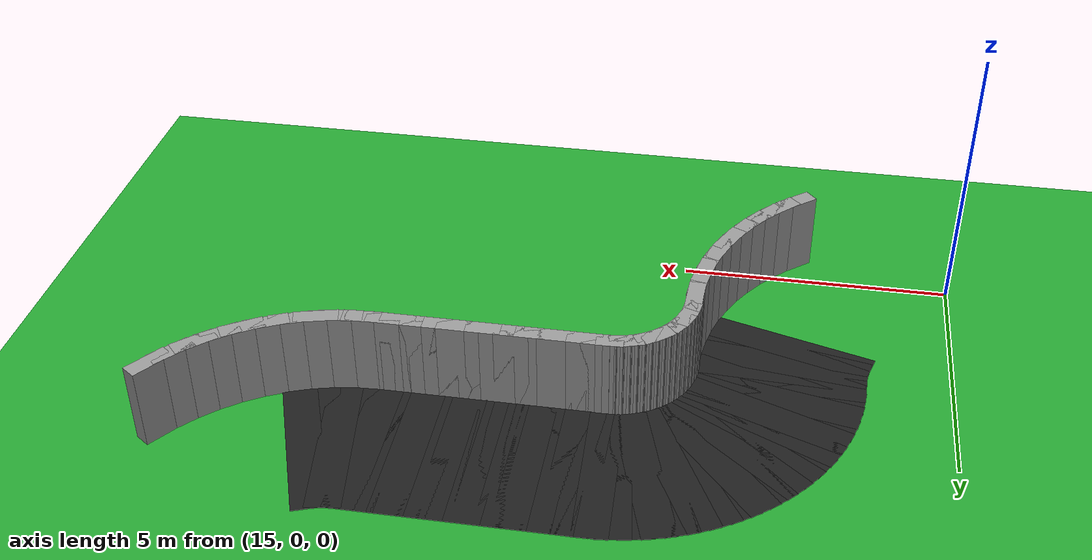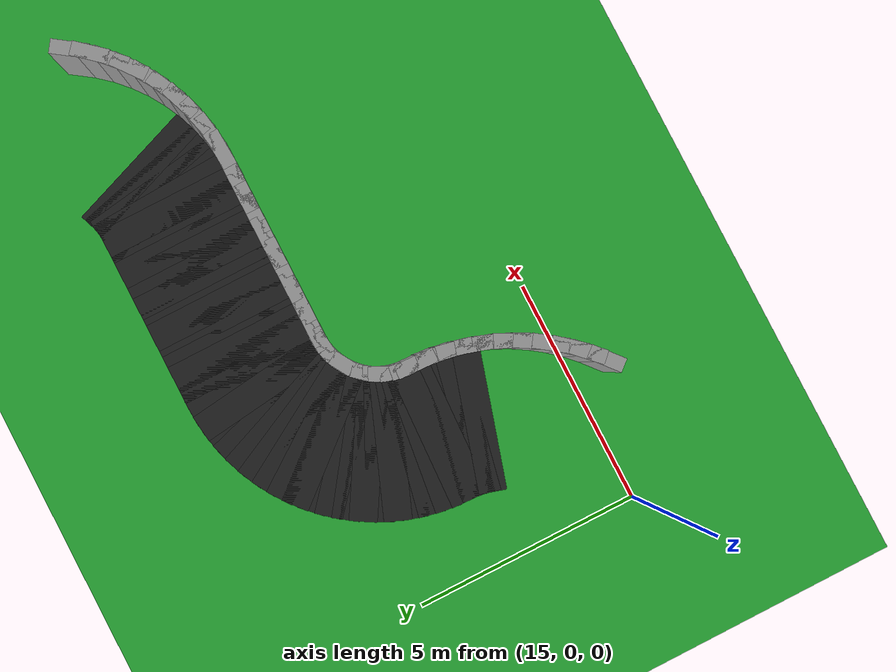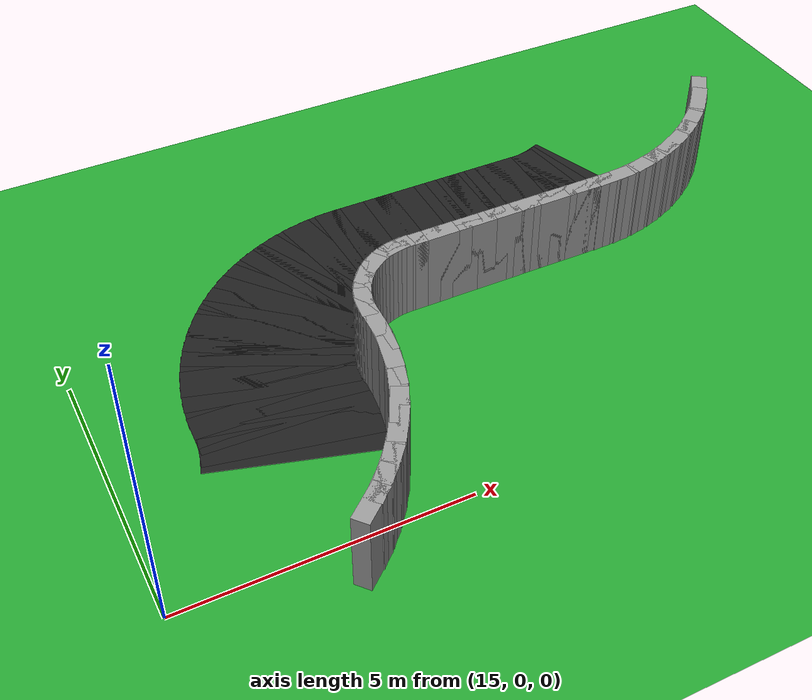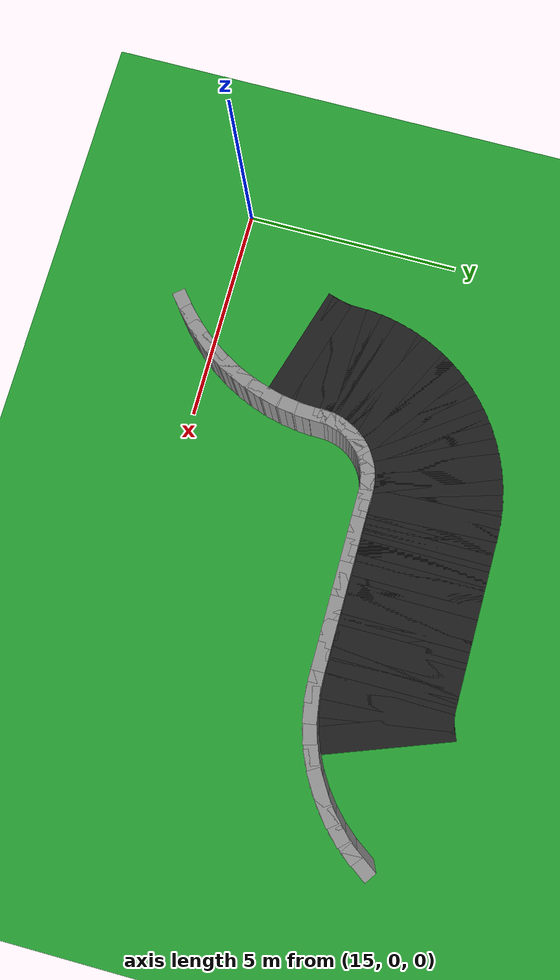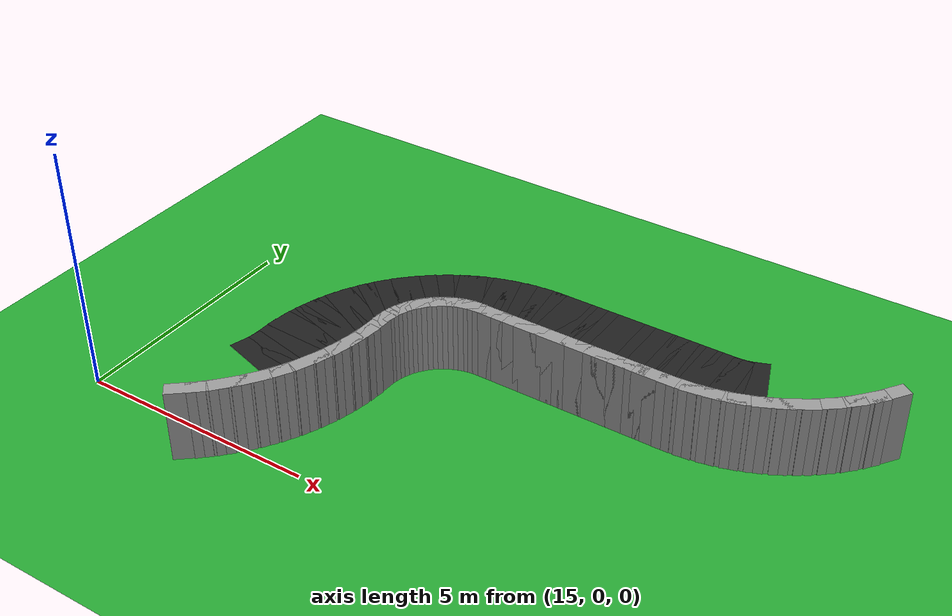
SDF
<sdf version="1.6">
 <world name="loop_extreme">
  <include><uri>model://sun</uri></include>
  <model name="ground_plane">
   <static>true</static>
   <link name="link">
    <collision name="collision">
     <surface><friction><ode><mu>100</mu><mu2>50</mu2></ode></friction></surface>
     <geometry><plane><normal>0 0 1</normal><size>120 120</size></plane></geometry>
    </collision>
    <visual name="visual">
     <geometry><plane><normal>0 0 1</normal><size>120 120</size></plane></geometry>
     <material>
      <script><uri>file://media/materials/scripts/gazebo.material</uri><name>Gazebo/Green</name></script>
     </material>
    </visual>
   </link>
  </model>
  <model name="curbR_68">
   <static>true</static>
   <pose>18.003 -0.545 0.750 0 0 0.70272</pose>
   <link name="link">
    <collision name="collision"><geometry><box><size>0.744 0.300 1.500</size></box></geometry></collision>
    <visual name="visual">
     <geometry><box><size>0.744 0.300 1.500</size></box></geometry>
     <material>
      <script><uri>file://media/materials/scripts/gazebo.material</uri><name>Gazebo/Grey</name></script>
     </material>
    </visual>
   </link>
  </model>
  <model name="curbR_69">
   <static>true</static>
   <pose>18.286 -0.285 0.750 0 0 0.78540</pose>
   <link name="link">
    <collision name="collision"><geometry><box><size>0.744 0.300 1.500</size></box></geometry></collision>
    <visual name="visual">
     <geometry><box><size>0.744 0.300 1.500</size></box></geometry>
     <material>
      <script><uri>file://media/materials/scripts/gazebo.material</uri><name>Gazebo/Grey</name></script>
     </material>
    </visual>
   </link>
  </model>
  <model name="curbR_70">
   <static>true</static>
   <pose>18.546 -0.002 0.750 0 0 0.86807</pose>
   <link name="link">
    <collision name="collision"><geometry><box><size>0.744 0.300 1.500</size></box></geometry></collision>
    <visual name="visual">
     <geometry><box><size>0.744 0.300 1.500</size></box></geometry>
     <material>
      <script><uri>file://media/materials/scripts/gazebo.material</uri><name>Gazebo/Grey</name></script>
     </material>
    </visual>
   </link>
  </model>
  <model name="curbR_71">
   <static>true</static>
   <pose>18.782 0.301 0.750 0 0 0.95075</pose>
   <link name="link">
    <collision name="collision"><geometry><box><size>0.744 0.300 1.500</size></box></geometry></collision>
    <visual name="visual">
     <geometry><box><size>0.744 0.300 1.500</size></box></geometry>
     <material>
      <script><uri>file://media/materials/scripts/gazebo.material</uri><name>Gazebo/Grey</name></script>
     </material>
    </visual>
   </link>
  </model>
  <model name="curbR_72">
   <static>true</static>
   <pose>18.992 0.622 0.750 0 0 1.03342</pose>
   <link name="link">
    <collision name="collision"><geometry><box><size>0.744 0.300 1.500</size></box></geometry></collision>
    <visual name="visual">
     <geometry><box><size>0.744 0.300 1.500</size></box></geometry>
     <material>
      <script><uri>file://media/materials/scripts/gazebo.material</uri><name>Gazebo/Grey</name></script>
     </material>
    </visual>
   </link>
  </model>
  <model name="curbR_73">
   <static>true</static>
   <pose>19.175 0.960 0.750 0 0 1.11609</pose>
   <link name="link">
    <collision name="collision"><geometry><box><size>0.744 0.300 1.500</size></box></geometry></collision>
    <visual name="visual">
     <geometry><box><size>0.744 0.300 1.500</size></box></geometry>
     <material>
      <script><uri>file://media/materials/scripts/gazebo.material</uri><name>Gazebo/Grey</name></script>
     </material>
    </visual>
   </link>
  </model>
  <model name="curbR_74">
   <static>true</static>
   <pose>19.329 1.312 0.750 0 0 1.19877</pose>
   <link name="link">
    <collision name="collision"><geometry><box><size>0.744 0.300 1.500</size></box></geometry></collision>
    <visual name="visual">
     <geometry><box><size>0.744 0.300 1.500</size></box></geometry>
     <material>
      <script><uri>file://media/materials/scripts/gazebo.material</uri><name>Gazebo/Grey</name></script>
     </material>
    </visual>
   </link>
  </model>
  <model name="asphalt_75">
   <static>true</static>
   <pose>17.874 2.145 0.005 0 0 1.28144</pose>
   <link name="link">
    <visual name="visual">
     <geometry><box><size>0.608 3.000 0.010</size></box></geometry>
     <material>
      <script><uri>file://media/materials/scripts/gazebo.material</uri><name>Gazebo/Black</name></script>
     </material>
    </visual>
   </link>
  </model>
  <model name="curbR_75">
   <static>true</static>
   <pose>19.454 1.675 0.750 0 0 1.28144</pose>
   <link name="link">
    <collision name="collision"><geometry><box><size>0.744 0.300 1.500</size></box></geometry></collision>
    <visual name="visual">
     <geometry><box><size>0.744 0.300 1.500</size></box></geometry>
     <material>
      <script><uri>file://media/materials/scripts/gazebo.material</uri><name>Gazebo/Grey</name></script>
     </material>
    </visual>
   </link>
  </model>
  <model name="asphalt_76">
   <static>true</static>
   <pose>17.934 2.386 0.005 0 0 1.36411</pose>
   <link name="link">
    <visual name="visual">
     <geometry><box><size>0.608 3.000 0.010</size></box></geometry>
     <material>
      <script><uri>file://media/materials/scripts/gazebo.material</uri><name>Gazebo/Black</name></script>
     </material>
    </visual>
   </link>
  </model>
  <model name="curbR_76">
   <static>true</static>
   <pose>19.548 2.047 0.750 0 0 1.36411</pose>
   <link name="link">
    <collision name="collision"><geometry><box><size>0.744 0.300 1.500</size></box></geometry></collision>
    <visual name="visual">
     <geometry><box><size>0.744 0.300 1.500</size></box></geometry>
     <material>
      <script><uri>file://media/materials/scripts/gazebo.material</uri><name>Gazebo/Grey</name></script>
     </material>
    </visual>
   </link>
  </model>
  <model name="asphalt_77">
   <static>true</static>
   <pose>17.975 2.630 0.005 0 0 1.44679</pose>
   <link name="link">
    <visual name="visual">
     <geometry><box><size>0.608 3.000 0.010</size></box></geometry>
     <material>
      <script><uri>file://media/materials/scripts/gazebo.material</uri><name>Gazebo/Black</name></script>
     </material>
    </visual>
   </link>
  </model>
  <model name="curbR_77">
   <static>true</static>
   <pose>19.611 2.426 0.750 0 0 1.44679</pose>
   <link name="link">
    <collision name="collision"><geometry><box><size>0.744 0.300 1.500</size></box></geometry></collision>
    <visual name="visual">
     <geometry><box><size>0.744 0.300 1.500</size></box></geometry>
     <material>
      <script><uri>file://media/materials/scripts/gazebo.material</uri><name>Gazebo/Grey</name></script>
     </material>
    </visual>
   </link>
  </model>
  <model name="asphalt_78">
   <static>true</static>
   <pose>17.996 2.877 0.005 0 0 1.52946</pose>
   <link name="link">
    <visual name="visual">
     <geometry><box><size>0.608 3.000 0.010</size></box></geometry>
     <material>
      <script><uri>file://media/materials/scripts/gazebo.material</uri><name>Gazebo/Black</name></script>
     </material>
    </visual>
   </link>
  </model>
  <model name="curbR_78">
   <static>true</static>
   <pose>19.643 2.809 0.750 0 0 1.52946</pose>
   <link name="link">
    <collision name="collision"><geometry><box><size>0.744 0.300 1.500</size></box></geometry></collision>
    <visual name="visual">
     <geometry><box><size>0.744 0.300 1.500</size></box></geometry>
     <material>
      <script><uri>file://media/materials/scripts/gazebo.material</uri><name>Gazebo/Grey</name></script>
     </material>
    </visual>
   </link>
  </model>
  <model name="asphalt_79">
   <static>true</static>
   <pose>18.006 3.125 0.005 0 0 1.52946</pose>
   <link name="link">
    <visual name="visual">
     <geometry><box><size>0.608 3.000 0.010</size></box></geometry>
     <material>
      <script><uri>file://media/materials/scripts/gazebo.material</uri><name>Gazebo/Black</name></script>
     </material>
    </visual>
   </link>
  </model>
  <model name="curbR_79">
   <static>true</static>
   <pose>19.653 3.057 0.750 0 0 1.52946</pose>
   <link name="link">
    <collision name="collision"><geometry><box><size>0.472 0.300 1.500</size></box></geometry></collision>
    <visual name="visual">
     <geometry><box><size>0.472 0.300 1.500</size></box></geometry>
     <material>
      <script><uri>file://media/materials/scripts/gazebo.material</uri><name>Gazebo/Grey</name></script>
     </material>
    </visual>
   </link>
  </model>
  <model name="asphalt_80">
   <static>true</static>
   <pose>18.026 3.372 0.005 0 0 1.44679</pose>
   <link name="link">
    <visual name="visual">
     <geometry><box><size>0.608 3.000 0.010</size></box></geometry>
     <material>
      <script><uri>file://media/materials/scripts/gazebo.material</uri><name>Gazebo/Black</name></script>
     </material>
    </visual>
   </link>
  </model>
  <model name="curbR_80">
   <static>true</static>
   <pose>19.662 3.168 0.750 0 0 1.44679</pose>
   <link name="link">
    <collision name="collision"><geometry><box><size>0.472 0.300 1.500</size></box></geometry></collision>
    <visual name="visual">
     <geometry><box><size>0.472 0.300 1.500</size></box></geometry>
     <material>
      <script><uri>file://media/materials/scripts/gazebo.material</uri><name>Gazebo/Grey</name></script>
     </material>
    </visual>
   </link>
  </model>
  <model name="asphalt_81">
   <static>true</static>
   <pose>18.067 3.616 0.005 0 0 1.36411</pose>
   <link name="link">
    <visual name="visual">
     <geometry><box><size>0.608 3.000 0.010</size></box></geometry>
     <material>
      <script><uri>file://media/materials/scripts/gazebo.material</uri><name>Gazebo/Black</name></script>
     </material>
    </visual>
   </link>
  </model>
  <model name="curbR_81">
   <static>true</static>
   <pose>19.681 3.278 0.750 0 0 1.36411</pose>
   <link name="link">
    <collision name="collision"><geometry><box><size>0.472 0.300 1.500</size></box></geometry></collision>
    <visual name="visual">
     <geometry><box><size>0.472 0.300 1.500</size></box></geometry>
     <material>
      <script><uri>file://media/materials/scripts/gazebo.material</uri><name>Gazebo/Grey</name></script>
     </material>
    </visual>
   </link>
  </model>
  <model name="asphalt_82">
   <static>true</static>
   <pose>18.128 3.856 0.005 0 0 1.28144</pose>
   <link name="link">
    <visual name="visual">
     <geometry><box><size>0.608 3.000 0.010</size></box></geometry>
     <material>
      <script><uri>file://media/materials/scripts/gazebo.material</uri><name>Gazebo/Black</name></script>
     </material>
    </visual>
   </link>
  </model>
  <model name="curbR_82">
   <static>true</static>
   <pose>19.708 3.386 0.750 0 0 1.28144</pose>
   <link name="link">
    <collision name="collision"><geometry><box><size>0.472 0.300 1.500</size></box></geometry></collision>
    <visual name="visual">
     <geometry><box><size>0.472 0.300 1.500</size></box></geometry>
     <material>
      <script><uri>file://media/materials/scripts/gazebo.material</uri><name>Gazebo/Grey</name></script>
     </material>
    </visual>
   </link>
  </model>
  <model name="asphalt_83">
   <static>true</static>
   <pose>18.209 4.091 0.005 0 0 1.19877</pose>
   <link name="link">
    <visual name="visual">
     <geometry><box><size>0.608 3.000 0.010</size></box></geometry>
     <material>
      <script><uri>file://media/materials/scripts/gazebo.material</uri><name>Gazebo/Black</name></script>
     </material>
    </visual>
   </link>
  </model>
  <model name="curbR_83">
   <static>true</static>
   <pose>19.744 3.491 0.750 0 0 1.19877</pose>
   <link name="link">
    <collision name="collision"><geometry><box><size>0.472 0.300 1.500</size></box></geometry></collision>
    <visual name="visual">
     <geometry><box><size>0.472 0.300 1.500</size></box></geometry>
     <material>
      <script><uri>file://media/materials/scripts/gazebo.material</uri><name>Gazebo/Grey</name></script>
     </material>
    </visual>
   </link>
  </model>
  <model name="asphalt_84">
   <static>true</static>
   <pose>18.308 4.318 0.005 0 0 1.11609</pose>
   <link name="link">
    <visual name="visual">
     <geometry><box><size>0.608 3.000 0.010</size></box></geometry>
     <material>
      <script><uri>file://media/materials/scripts/gazebo.material</uri><name>Gazebo/Black</name></script>
     </material>
    </visual>
   </link>
  </model>
  <model name="curbR_84">
   <static>true</static>
   <pose>19.789 3.594 0.750 0 0 1.11609</pose>
   <link name="link">
    <collision name="collision"><geometry><box><size>0.472 0.300 1.500</size></box></geometry></collision>
    <visual name="visual">
     <geometry><box><size>0.472 0.300 1.500</size></box></geometry>
     <material>
      <script><uri>file://media/materials/scripts/gazebo.material</uri><name>Gazebo/Grey</name></script>
     </material>
    </visual>
   </link>
  </model>
  <model name="asphalt_85">
   <static>true</static>
   <pose>18.426 4.536 0.005 0 0 1.03342</pose>
   <link name="link">
    <visual name="visual">
     <geometry><box><size>0.608 3.000 0.010</size></box></geometry>
     <material>
      <script><uri>file://media/materials/scripts/gazebo.material</uri><name>Gazebo/Black</name></script>
     </material>
    </visual>
   </link>
  </model>
  <model name="curbR_85">
   <static>true</static>
   <pose>19.842 3.692 0.750 0 0 1.03342</pose>
   <link name="link">
    <collision name="collision"><geometry><box><size>0.472 0.300 1.500</size></box></geometry></collision>
    <visual name="visual">
     <geometry><box><size>0.472 0.300 1.500</size></box></geometry>
     <material>
      <script><uri>file://media/materials/scripts/gazebo.material</uri><name>Gazebo/Grey</name></script>
     </material>
    </visual>
   </link>
  </model>
  <model name="asphalt_86">
   <static>true</static>
   <pose>18.562 4.743 0.005 0 0 0.95075</pose>
   <link name="link">
    <visual name="visual">
     <geometry><box><size>0.608 3.000 0.010</size></box></geometry>
     <material>
      <script><uri>file://media/materials/scripts/gazebo.material</uri><name>Gazebo/Black</name></script>
     </material>
    </visual>
   </link>
  </model>
  <model name="curbR_86">
   <static>true</static>
   <pose>19.903 3.785 0.750 0 0 0.95075</pose>
   <link name="link">
    <collision name="collision"><geometry><box><size>0.472 0.300 1.500</size></box></geometry></collision>
    <visual name="visual">
     <geometry><box><size>0.472 0.300 1.500</size></box></geometry>
     <material>
      <script><uri>file://media/materials/scripts/gazebo.material</uri><name>Gazebo/Grey</name></script>
     </material>
    </visual>
   </link>
  </model>
  <model name="asphalt_87">
   <static>true</static>
   <pose>18.714 4.939 0.005 0 0 0.86807</pose>
   <link name="link">
    <visual name="visual">
     <geometry><box><size>0.608 3.000 0.010</size></box></geometry>
     <material>
      <script><uri>file://media/materials/scripts/gazebo.material</uri><name>Gazebo/Black</name></script>
     </material>
    </visual>
   </link>
  </model>
  <model name="curbR_87">
   <static>true</static>
   <pose>19.972 3.873 0.750 0 0 0.86807</pose>
   <link name="link">
    <collision name="collision"><geometry><box><size>0.472 0.300 1.500</size></box></geometry></collision>
    <visual name="visual">
     <geometry><box><size>0.472 0.300 1.500</size></box></geometry>
     <material>
      <script><uri>file://media/materials/scripts/gazebo.material</uri><name>Gazebo/Grey</name></script>
     </material>
    </visual>
   </link>
  </model>
  <model name="asphalt_88">
   <static>true</static>
   <pose>18.882 5.121 0.005 0 0 0.78540</pose>
   <link name="link">
    <visual name="visual">
     <geometry><box><size>0.608 3.000 0.010</size></box></geometry>
     <material>
      <script><uri>file://media/materials/scripts/gazebo.material</uri><name>Gazebo/Black</name></script>
     </material>
    </visual>
   </link>
  </model>
  <model name="curbR_88">
   <static>true</static>
   <pose>20.047 3.955 0.750 0 0 0.78540</pose>
   <link name="link">
    <collision name="collision"><geometry><box><size>0.472 0.300 1.500</size></box></geometry></collision>
    <visual name="visual">
     <geometry><box><size>0.472 0.300 1.500</size></box></geometry>
     <material>
      <script><uri>file://media/materials/scripts/gazebo.material</uri><name>Gazebo/Grey</name></script>
     </material>
    </visual>
   </link>
  </model>
  <model name="asphalt_89">
   <static>true</static>
   <pose>19.064 5.289 0.005 0 0 0.70272</pose>
   <link name="link">
    <visual name="visual">
     <geometry><box><size>0.608 3.000 0.010</size></box></geometry>
     <material>
      <script><uri>file://media/materials/scripts/gazebo.material</uri><name>Gazebo/Black</name></script>
     </material>
    </visual>
   </link>
  </model>
  <model name="curbR_89">
   <static>true</static>
   <pose>20.129 4.031 0.750 0 0 0.70272</pose>
   <link name="link">
    <collision name="collision"><geometry><box><size>0.472 0.300 1.500</size></box></geometry></collision>
    <visual name="visual">
     <geometry><box><size>0.472 0.300 1.500</size></box></geometry>
     <material>
      <script><uri>file://media/materials/scripts/gazebo.material</uri><name>Gazebo/Grey</name></script>
     </material>
    </visual>
   </link>
  </model>
  <model name="asphalt_90">
   <static>true</static>
   <pose>19.259 5.441 0.005 0 0 0.62005</pose>
   <link name="link">
    <visual name="visual">
     <geometry><box><size>0.608 3.000 0.010</size></box></geometry>
     <material>
      <script><uri>file://media/materials/scripts/gazebo.material</uri><name>Gazebo/Black</name></script>
     </material>
    </visual>
   </link>
  </model>
  <model name="curbR_90">
   <static>true</static>
   <pose>20.217 4.099 0.750 0 0 0.62005</pose>
   <link name="link">
    <collision name="collision"><geometry><box><size>0.472 0.300 1.500</size></box></geometry></collision>
    <visual name="visual">
     <geometry><box><size>0.472 0.300 1.500</size></box></geometry>
     <material>
      <script><uri>file://media/materials/scripts/gazebo.material</uri><name>Gazebo/Grey</name></script>
     </material>
    </visual>
   </link>
  </model>
  <model name="asphalt_91">
   <static>true</static>
   <pose>19.467 5.577 0.005 0 0 0.53738</pose>
   <link name="link">
    <visual name="visual">
     <geometry><box><size>0.608 3.000 0.010</size></box></geometry>
     <material>
      <script><uri>file://media/materials/scripts/gazebo.material</uri><name>Gazebo/Black</name></script>
     </material>
    </visual>
   </link>
  </model>
  <model name="curbR_91">
   <static>true</static>
   <pose>20.311 4.160 0.750 0 0 0.53738</pose>
   <link name="link">
    <collision name="collision"><geometry><box><size>0.472 0.300 1.500</size></box></geometry></collision>
    <visual name="visual">
     <geometry><box><size>0.472 0.300 1.500</size></box></geometry>
     <material>
      <script><uri>file://media/materials/scripts/gazebo.material</uri><name>Gazebo/Grey</name></script>
     </material>
    </visual>
   </link>
  </model>
  <model name="asphalt_92">
   <static>true</static>
   <pose>19.685 5.694 0.005 0 0 0.45470</pose>
   <link name="link">
    <visual name="visual">
     <geometry><box><size>0.608 3.000 0.010</size></box></geometry>
     <material>
      <script><uri>file://media/materials/scripts/gazebo.material</uri><name>Gazebo/Black</name></script>
     </material>
    </visual>
   </link>
  </model>
  <model name="curbR_92">
   <static>true</static>
   <pose>20.409 4.213 0.750 0 0 0.45470</pose>
   <link name="link">
    <collision name="collision"><geometry><box><size>0.472 0.300 1.500</size></box></geometry></collision>
    <visual name="visual">
     <geometry><box><size>0.472 0.300 1.500</size></box></geometry>
     <material>
      <script><uri>file://media/materials/scripts/gazebo.material</uri><name>Gazebo/Grey</name></script>
     </material>
    </visual>
   </link>
  </model>
  <model name="asphalt_93">
   <static>true</static>
   <pose>19.912 5.794 0.005 0 0 0.37203</pose>
   <link name="link">
    <visual name="visual">
     <geometry><box><size>0.608 3.000 0.010</size></box></geometry>
     <material>
      <script><uri>file://media/materials/scripts/gazebo.material</uri><name>Gazebo/Black</name></script>
     </material>
    </visual>
   </link>
  </model>
  <model name="curbR_93">
   <static>true</static>
   <pose>20.511 4.258 0.750 0 0 0.37203</pose>
   <link name="link">
    <collision name="collision"><geometry><box><size>0.472 0.300 1.500</size></box></geometry></collision>
    <visual name="visual">
     <geometry><box><size>0.472 0.300 1.500</size></box></geometry>
     <material>
      <script><uri>file://media/materials/scripts/gazebo.material</uri><name>Gazebo/Grey</name></script>
     </material>
    </visual>
   </link>
  </model>
  <model name="asphalt_94">
   <static>true</static>
   <pose>20.146 5.874 0.005 0 0 0.28936</pose>
   <link name="link">
    <visual name="visual">
     <geometry><box><size>0.608 3.000 0.010</size></box></geometry>
     <material>
      <script><uri>file://media/materials/scripts/gazebo.material</uri><name>Gazebo/Black</name></script>
     </material>
    </visual>
   </link>
  </model>
  <model name="curbR_94">
   <static>true</static>
   <pose>20.617 4.294 0.750 0 0 0.28936</pose>
   <link name="link">
    <collision name="collision"><geometry><box><size>0.472 0.300 1.500</size></box></geometry></collision>
    <visual name="visual">
     <geometry><box><size>0.472 0.300 1.500</size></box></geometry>
     <material>
      <script><uri>file://media/materials/scripts/gazebo.material</uri><name>Gazebo/Grey</name></script>
     </material>
    </visual>
   </link>
  </model>
  <model name="asphalt_95">
   <static>true</static>
   <pose>20.386 5.935 0.005 0 0 0.20668</pose>
   <link name="link">
    <visual name="visual">
     <geometry><box><size>0.608 3.000 0.010</size></box></geometry>
     <material>
      <script><uri>file://media/materials/scripts/gazebo.material</uri><name>Gazebo/Black</name></script>
     </material>
    </visual>
   </link>
  </model>
  <model name="curbR_95">
   <static>true</static>
   <pose>20.725 4.322 0.750 0 0 0.20668</pose>
   <link name="link">
    <collision name="collision"><geometry><box><size>0.472 0.300 1.500</size></box></geometry></collision>
    <visual name="visual">
     <geometry><box><size>0.472 0.300 1.500</size></box></geometry>
     <material>
      <script><uri>file://media/materials/scripts/gazebo.material</uri><name>Gazebo/Grey</name></script>
     </material>
    </visual>
   </link>
  </model>
  <model name="asphalt_96">
   <static>true</static>
   <pose>20.631 5.976 0.005 0 0 0.12401</pose>
   <link name="link">
    <visual name="visual">
     <geometry><box><size>0.608 3.000 0.010</size></box></geometry>
     <material>
      <script><uri>file://media/materials/scripts/gazebo.material</uri><name>Gazebo/Black</name></script>
     </material>
    </visual>
   </link>
  </model>
  <model name="curbR_96">
   <static>true</static>
   <pose>20.835 4.340 0.750 0 0 0.12401</pose>
   <link name="link">
    <collision name="collision"><geometry><box><size>0.472 0.300 1.500</size></box></geometry></collision>
    <visual name="visual">
     <geometry><box><size>0.472 0.300 1.500</size></box></geometry>
     <material>
      <script><uri>file://media/materials/scripts/gazebo.material</uri><name>Gazebo/Grey</name></script>
     </material>
    </visual>
   </link>
  </model>
  <model name="asphalt_97">
   <static>true</static>
   <pose>20.878 5.997 0.005 0 0 0.04134</pose>
   <link name="link">
    <visual name="visual">
     <geometry><box><size>0.608 3.000 0.010</size></box></geometry>
     <material>
      <script><uri>file://media/materials/scripts/gazebo.material</uri><name>Gazebo/Black</name></script>
     </material>
    </visual>
   </link>
  </model>
  <model name="curbR_97">
   <static>true</static>
   <pose>20.946 4.349 0.750 0 0 0.04134</pose>
   <link name="link">
    <collision name="collision"><geometry><box><size>0.472 0.300 1.500</size></box></geometry></collision>
    <visual name="visual">
     <geometry><box><size>0.472 0.300 1.500</size></box></geometry>
     <material>
      <script><uri>file://media/materials/scripts/gazebo.material</uri><name>Gazebo/Grey</name></script>
     </material>
    </visual>
   </link>
  </model>
  <model name="asphalt_98">
   <static>true</static>
   <pose>21.127 6.002 0.005 0 0 0.00000</pose>
   <link name="link">
    <visual name="visual">
     <geometry><box><size>0.610 3.000 0.010</size></box></geometry>
     <material>
      <script><uri>file://media/materials/scripts/gazebo.material</uri><name>Gazebo/Black</name></script>
     </material>
    </visual>
   </link>
  </model>
  <model name="curbR_98">
   <static>true</static>
   <pose>21.127 4.352 0.750 0 0 0.00000</pose>
   <link name="link">
    <collision name="collision"><geometry><box><size>0.610 0.300 1.500</size></box></geometry></collision>
    <visual name="visual">
     <geometry><box><size>0.610 0.300 1.500</size></box></geometry>
     <material>
      <script><uri>file://media/materials/scripts/gazebo.material</uri><name>Gazebo/Grey</name></script>
     </material>
    </visual>
   </link>
  </model>
  <model name="asphalt_99">
   <static>true</static>
   <pose>21.377 6.002 0.005 0 0 0.00000</pose>
   <link name="link">
    <visual name="visual">
     <geometry><box><size>0.610 3.000 0.010</size></box></geometry>
     <material>
      <script><uri>file://media/materials/scripts/gazebo.material</uri><name>Gazebo/Black</name></script>
     </material>
    </visual>
   </link>
  </model>
  <model name="curbR_99">
   <static>true</static>
   <pose>21.377 4.352 0.750 0 0 0.00000</pose>
   <link name="link">
    <collision name="collision"><geometry><box><size>0.610 0.300 1.500</size></box></geometry></collision>
    <visual name="visual">
     <geometry><box><size>0.610 0.300 1.500</size></box></geometry>
     <material>
      <script><uri>file://media/materials/scripts/gazebo.material</uri><name>Gazebo/Grey</name></script>
     </material>
    </visual>
   </link>
  </model>
  <model name="asphalt_100">
   <static>true</static>
   <pose>21.627 6.002 0.005 0 0 0.00000</pose>
   <link name="link">
    <visual name="visual">
     <geometry><box><size>0.610 3.000 0.010</size></box></geometry>
     <material>
      <script><uri>file://media/materials/scripts/gazebo.material</uri><name>Gazebo/Black</name></script>
     </material>
    </visual>
   </link>
  </model>
  <model name="curbR_100">
   <static>true</static>
   <pose>21.627 4.352 0.750 0 0 0.00000</pose>
   <link name="link">
    <collision name="collision"><geometry><box><size>0.610 0.300 1.500</size></box></geometry></collision>
    <visual name="visual">
     <geometry><box><size>0.610 0.300 1.500</size></box></geometry>
     <material>
      <script><uri>file://media/materials/scripts/gazebo.material</uri><name>Gazebo/Grey</name></script>
     </material>
    </visual>
   </link>
  </model>
  <model name="asphalt_101">
   <static>true</static>
   <pose>21.877 6.002 0.005 0 0 0.00000</pose>
   <link name="link">
    <visual name="visual">
     <geometry><box><size>0.610 3.000 0.010</size></box></geometry>
     <material>
      <script><uri>file://media/materials/scripts/gazebo.material</uri><name>Gazebo/Black</name></script>
     </material>
    </visual>
   </link>
  </model>
  <model name="curbR_101">
   <static>true</static>
   <pose>21.877 4.352 0.750 0 0 0.00000</pose>
   <link name="link">
    <collision name="collision"><geometry><box><size>0.610 0.300 1.500</size></box></geometry></collision>
    <visual name="visual">
     <geometry><box><size>0.610 0.300 1.500</size></box></geometry>
     <material>
      <script><uri>file://media/materials/scripts/gazebo.material</uri><name>Gazebo/Grey</name></script>
     </material>
    </visual>
   </link>
  </model>
  <model name="asphalt_102">
   <static>true</static>
   <pose>22.127 6.002 0.005 0 0 0.00000</pose>
   <link name="link">
    <visual name="visual">
     <geometry><box><size>0.610 3.000 0.010</size></box></geometry>
     <material>
      <script><uri>file://media/materials/scripts/gazebo.material</uri><name>Gazebo/Black</name></script>
     </material>
    </visual>
   </link>
  </model>
  <model name="curbR_102">
   <static>true</static>
   <pose>22.127 4.352 0.750 0 0 0.00000</pose>
   <link name="link">
    <collision name="collision"><geometry><box><size>0.610 0.300 1.500</size></box></geometry></collision>
    <visual name="visual">
     <geometry><box><size>0.610 0.300 1.500</size></box></geometry>
     <material>
      <script><uri>file://media/materials/scripts/gazebo.material</uri><name>Gazebo/Grey</name></script>
     </material>
    </visual>
   </link>
  </model>
  <model name="asphalt_103">
   <static>true</static>
   <pose>22.377 6.002 0.005 0 0 0.00000</pose>
   <link name="link">
    <visual name="visual">
     <geometry><box><size>0.610 3.000 0.010</size></box></geometry>
     <material>
      <script><uri>file://media/materials/scripts/gazebo.material</uri><name>Gazebo/Black</name></script>
     </material>
    </visual>
   </link>
  </model>
  <model name="curbR_103">
   <static>true</static>
   <pose>22.377 4.352 0.750 0 0 0.00000</pose>
   <link name="link">
    <collision name="collision"><geometry><box><size>0.610 0.300 1.500</size></box></geometry></collision>
    <visual name="visual">
     <geometry><box><size>0.610 0.300 1.500</size></box></geometry>
     <material>
      <script><uri>file://media/materials/scripts/gazebo.material</uri><name>Gazebo/Grey</name></script>
     </material>
    </visual>
   </link>
  </model>
  <model name="asphalt_104">
   <static>true</static>
   <pose>22.627 6.002 0.005 0 0 0.00000</pose>
   <link name="link">
    <visual name="visual">
     <geometry><box><size>0.610 3.000 0.010</size></box></geometry>
     <material>
      <script><uri>file://media/materials/scripts/gazebo.material</uri><name>Gazebo/Black</name></script>
     </material>
    </visual>
   </link>
  </model>
  <model name="curbR_104">
   <static>true</static>
   <pose>22.627 4.352 0.750 0 0 0.00000</pose>
   <link name="link">
    <collision name="collision"><geometry><box><size>0.610 0.300 1.500</size></box></geometry></collision>
    <visual name="visual">
     <geometry><box><size>0.610 0.300 1.500</size></box></geometry>
     <material>
      <script><uri>file://media/materials/scripts/gazebo.material</uri><name>Gazebo/Grey</name></script>
     </material>
    </visual>
   </link>
  </model>
  <model name="asphalt_105">
   <static>true</static>
   <pose>22.877 6.002 0.005 0 0 0.00000</pose>
   <link name="link">
    <visual name="visual">
     <geometry><box><size>0.610 3.000 0.010</size></box></geometry>
     <material>
      <script><uri>file://media/materials/scripts/gazebo.material</uri><name>Gazebo/Black</name></script>
     </material>
    </visual>
   </link>
  </model>
  <model name="curbR_105">
   <static>true</static>
   <pose>22.877 4.352 0.750 0 0 0.00000</pose>
   <link name="link">
    <collision name="collision"><geometry><box><size>0.610 0.300 1.500</size></box></geometry></collision>
    <visual name="visual">
     <geometry><box><size>0.610 0.300 1.500</size></box></geometry>
     <material>
      <script><uri>file://media/materials/scripts/gazebo.material</uri><name>Gazebo/Grey</name></script>
     </material>
    </visual>
   </link>
  </model>
  <model name="asphalt_106">
   <static>true</static>
   <pose>23.127 6.002 0.005 0 0 0.00000</pose>
   <link name="link">
    <visual name="visual">
     <geometry><box><size>0.610 3.000 0.010</size></box></geometry>
     <material>
      <script><uri>file://media/materials/scripts/gazebo.material</uri><name>Gazebo/Black</name></script>
     </material>
    </visual>
   </link>
  </model>
  <model name="curbR_106">
   <static>true</static>
   <pose>23.127 4.352 0.750 0 0 0.00000</pose>
   <link name="link">
    <collision name="collision"><geometry><box><size>0.610 0.300 1.500</size></box></geometry></collision>
    <visual name="visual">
     <geometry><box><size>0.610 0.300 1.500</size></box></geometry>
     <material>
      <script><uri>file://media/materials/scripts/gazebo.material</uri><name>Gazebo/Grey</name></script>
     </material>
    </visual>
   </link>
  </model>
  <model name="asphalt_107">
   <static>true</static>
   <pose>23.377 6.002 0.005 0 0 0.00000</pose>
   <link name="link">
    <visual name="visual">
     <geometry><box><size>0.610 3.000 0.010</size></box></geometry>
     <material>
      <script><uri>file://media/materials/scripts/gazebo.material</uri><name>Gazebo/Black</name></script>
     </material>
    </visual>
   </link>
  </model>
  <model name="curbR_107">
   <static>true</static>
   <pose>23.377 4.352 0.750 0 0 0.00000</pose>
   <link name="link">
    <collision name="collision"><geometry><box><size>0.610 0.300 1.500</size></box></geometry></collision>
    <visual name="visual">
     <geometry><box><size>0.610 0.300 1.500</size></box></geometry>
     <material>
      <script><uri>file://media/materials/scripts/gazebo.material</uri><name>Gazebo/Grey</name></script>
     </material>
    </visual>
   </link>
  </model>
  <model name="asphalt_108">
   <static>true</static>
   <pose>23.627 6.002 0.005 0 0 0.00000</pose>
   <link name="link">
    <visual name="visual">
     <geometry><box><size>0.610 3.000 0.010</size></box></geometry>
     <material>
      <script><uri>file://media/materials/scripts/gazebo.material</uri><name>Gazebo/Black</name></script>
     </material>
    </visual>
   </link>
  </model>
  <model name="curbR_108">
   <static>true</static>
   <pose>23.627 4.352 0.750 0 0 0.00000</pose>
   <link name="link">
    <collision name="collision"><geometry><box><size>0.610 0.300 1.500</size></box></geometry></collision>
    <visual name="visual">
     <geometry><box><size>0.610 0.300 1.500</size></box></geometry>
     <material>
      <script><uri>file://media/materials/scripts/gazebo.material</uri><name>Gazebo/Grey</name></script>
     </material>
    </visual>
   </link>
  </model>
  <model name="asphalt_109">
   <static>true</static>
   <pose>23.877 6.002 0.005 0 0 0.00000</pose>
   <link name="link">
    <visual name="visual">
     <geometry><box><size>0.610 3.000 0.010</size></box></geometry>
     <material>
      <script><uri>file://media/materials/scripts/gazebo.material</uri><name>Gazebo/Black</name></script>
     </material>
    </visual>
   </link>
  </model>
  <model name="curbR_109">
   <static>true</static>
   <pose>23.877 4.352 0.750 0 0 0.00000</pose>
   <link name="link">
    <collision name="collision"><geometry><box><size>0.610 0.300 1.500</size></box></geometry></collision>
    <visual name="visual">
     <geometry><box><size>0.610 0.300 1.500</size></box></geometry>
     <material>
      <script><uri>file://media/materials/scripts/gazebo.material</uri><name>Gazebo/Grey</name></script>
     </material>
    </visual>
   </link>
  </model>
  <model name="asphalt_110">
   <static>true</static>
   <pose>24.127 6.002 0.005 0 0 0.00000</pose>
   <link name="link">
    <visual name="visual">
     <geometry><box><size>0.610 3.000 0.010</size></box></geometry>
     <material>
      <script><uri>file://media/materials/scripts/gazebo.material</uri><name>Gazebo/Black</name></script>
     </material>
    </visual>
   </link>
  </model>
  <model name="curbR_110">
   <static>true</static>
   <pose>24.127 4.352 0.750 0 0 0.00000</pose>
   <link name="link">
    <collision name="collision"><geometry><box><size>0.610 0.300 1.500</size></box></geometry></collision>
    <visual name="visual">
     <geometry><box><size>0.610 0.300 1.500</size></box></geometry>
     <material>
      <script><uri>file://media/materials/scripts/gazebo.material</uri><name>Gazebo/Grey</name></script>
     </material>
    </visual>
   </link>
  </model>
  <model name="asphalt_111">
   <static>true</static>
   <pose>24.377 6.002 0.005 0 0 0.00000</pose>
   <link name="link">
    <visual name="visual">
     <geometry><box><size>0.610 3.000 0.010</size></box></geometry>
     <material>
      <script><uri>file://media/materials/scripts/gazebo.material</uri><name>Gazebo/Black</name></script>
     </material>
    </visual>
   </link>
  </model>
  <model name="curbR_111">
   <static>true</static>
   <pose>24.377 4.352 0.750 0 0 0.00000</pose>
   <link name="link">
    <collision name="collision"><geometry><box><size>0.610 0.300 1.500</size></box></geometry></collision>
    <visual name="visual">
     <geometry><box><size>0.610 0.300 1.500</size></box></geometry>
     <material>
      <script><uri>file://media/materials/scripts/gazebo.material</uri><name>Gazebo/Grey</name></script>
     </material>
    </visual>
   </link>
  </model>
  <model name="asphalt_112">
   <static>true</static>
   <pose>24.627 6.002 0.005 0 0 0.00000</pose>
   <link name="link">
    <visual name="visual">
     <geometry><box><size>0.610 3.000 0.010</size></box></geometry>
     <material>
      <script><uri>file://media/materials/scripts/gazebo.material</uri><name>Gazebo/Black</name></script>
     </material>
    </visual>
   </link>
  </model>
  <model name="curbR_112">
   <static>true</static>
   <pose>24.627 4.352 0.750 0 0 0.00000</pose>
   <link name="link">
    <collision name="collision"><geometry><box><size>0.610 0.300 1.500</size></box></geometry></collision>
    <visual name="visual">
     <geometry><box><size>0.610 0.300 1.500</size></box></geometry>
     <material>
      <script><uri>file://media/materials/scripts/gazebo.material</uri><name>Gazebo/Grey</name></script>
     </material>
    </visual>
   </link>
  </model>
  <model name="asphalt_113">
   <static>true</static>
   <pose>24.877 6.002 0.005 0 0 0.00000</pose>
   <link name="link">
    <visual name="visual">
     <geometry><box><size>0.610 3.000 0.010</size></box></geometry>
     <material>
      <script><uri>file://media/materials/scripts/gazebo.material</uri><name>Gazebo/Black</name></script>
     </material>
    </visual>
   </link>
  </model>
  <model name="curbR_113">
   <static>true</static>
   <pose>24.877 4.352 0.750 0 0 0.00000</pose>
   <link name="link">
    <collision name="collision"><geometry><box><size>0.610 0.300 1.500</size></box></geometry></collision>
    <visual name="visual">
     <geometry><box><size>0.610 0.300 1.500</size></box></geometry>
     <material>
      <script><uri>file://media/materials/scripts/gazebo.material</uri><name>Gazebo/Grey</name></script>
     </material>
    </visual>
   </link>
  </model>
  <model name="asphalt_114">
   <static>true</static>
   <pose>25.128 6.008 0.005 0 0 0.05067</pose>
   <link name="link">
    <visual name="visual">
     <geometry><box><size>0.613 3.000 0.010</size></box></geometry>
     <material>
      <script><uri>file://media/materials/scripts/gazebo.material</uri><name>Gazebo/Black</name></script>
     </material>
    </visual>
   </link>
  </model>
  <model name="curbR_114">
   <static>true</static>
   <pose>25.212 4.362 0.750 0 0 0.05067</pose>
   <link name="link">
    <collision name="collision"><geometry><box><size>0.780 0.300 1.500</size></box></geometry></collision>
    <visual name="visual">
     <geometry><box><size>0.780 0.300 1.500</size></box></geometry>
     <material>
      <script><uri>file://media/materials/scripts/gazebo.material</uri><name>Gazebo/Grey</name></script>
     </material>
    </visual>
   </link>
  </model>
  <model name="asphalt_115">
   <static>true</static>
   <pose>25.380 6.034 0.005 0 0 0.15201</pose>
   <link name="link">
    <visual name="visual">
     <geometry><box><size>0.613 3.000 0.010</size></box></geometry>
     <material>
      <script><uri>file://media/materials/scripts/gazebo.material</uri><name>Gazebo/Black</name></script>
     </material>
    </visual>
   </link>
  </model>
  <model name="curbR_115">
   <static>true</static>
   <pose>25.629 4.405 0.750 0 0 0.15201</pose>
   <link name="link">
    <collision name="collision"><geometry><box><size>0.780 0.300 1.500</size></box></geometry></collision>
    <visual name="visual">
     <geometry><box><size>0.780 0.300 1.500</size></box></geometry>
     <material>
      <script><uri>file://media/materials/scripts/gazebo.material</uri><name>Gazebo/Grey</name></script>
     </material>
    </visual>
   </link>
  </model>
  <model name="asphalt_116">
   <static>true</static>
   <pose>25.628 6.085 0.005 0 0 0.25335</pose>
   <link name="link">
    <visual name="visual">
     <geometry><box><size>0.613 3.000 0.010</size></box></geometry>
     <material>
      <script><uri>file://media/materials/scripts/gazebo.material</uri><name>Gazebo/Black</name></script>
     </material>
    </visual>
   </link>
  </model>
  <model name="curbR_116">
   <static>true</static>
   <pose>26.041 4.489 0.750 0 0 0.25335</pose>
   <link name="link">
    <collision name="collision"><geometry><box><size>0.780 0.300 1.500</size></box></geometry></collision>
    <visual name="visual">
     <geometry><box><size>0.780 0.300 1.500</size></box></geometry>
     <material>
      <script><uri>file://media/materials/scripts/gazebo.material</uri><name>Gazebo/Grey</name></script>
     </material>
    </visual>
   </link>
  </model>
  <model name="asphalt_117">
   <static>true</static>
   <pose>25.869 6.160 0.005 0 0 0.35470</pose>
   <link name="link">
    <visual name="visual">
     <geometry><box><size>0.613 3.000 0.010</size></box></geometry>
     <material>
      <script><uri>file://media/materials/scripts/gazebo.material</uri><name>Gazebo/Black</name></script>
     </material>
    </visual>
   </link>
  </model>
  <model name="curbR_117">
   <static>true</static>
   <pose>26.442 4.615 0.750 0 0 0.35470</pose>
   <link name="link">
    <collision name="collision"><geometry><box><size>0.780 0.300 1.500</size></box></geometry></collision>
    <visual name="visual">
     <geometry><box><size>0.780 0.300 1.500</size></box></geometry>
     <material>
      <script><uri>file://media/materials/scripts/gazebo.material</uri><name>Gazebo/Grey</name></script>
     </material>
    </visual>
   </link>
  </model>
  <model name="curbR_118">
   <static>true</static>
   <pose>26.827 4.781 0.750 0 0 0.45604</pose>
   <link name="link">
    <collision name="collision"><geometry><box><size>0.780 0.300 1.500</size></box></geometry></collision>
    <visual name="visual">
     <geometry><box><size>0.780 0.300 1.500</size></box></geometry>
     <material>
      <script><uri>file://media/materials/scripts/gazebo.material</uri><name>Gazebo/Grey</name></script>
     </material>
    </visual>
   </link>
  </model>
  <model name="curbR_119">
   <static>true</static>
   <pose>27.195 4.985 0.750 0 0 0.55738</pose>
   <link name="link">
    <collision name="collision"><geometry><box><size>0.780 0.300 1.500</size></box></geometry></collision>
    <visual name="visual">
     <geometry><box><size>0.780 0.300 1.500</size></box></geometry>
     <material>
      <script><uri>file://media/materials/scripts/gazebo.material</uri><name>Gazebo/Grey</name></script>
     </material>
    </visual>
   </link>
  </model>
  <model name="curbR_120">
   <static>true</static>
   <pose>27.539 5.224 0.750 0 0 0.65872</pose>
   <link name="link">
    <collision name="collision"><geometry><box><size>0.780 0.300 1.500</size></box></geometry></collision>
    <visual name="visual">
     <geometry><box><size>0.780 0.300 1.500</size></box></geometry>
     <material>
      <script><uri>file://media/materials/scripts/gazebo.material</uri><name>Gazebo/Grey</name></script>
     </material>
    </visual>
   </link>
  </model>
  <model name="curbR_121">
   <static>true</static>
   <pose>27.858 5.498 0.750 0 0 0.76006</pose>
   <link name="link">
    <collision name="collision"><geometry><box><size>0.780 0.300 1.500</size></box></geometry></collision>
    <visual name="visual">
     <geometry><box><size>0.780 0.300 1.500</size></box></geometry>
     <material>
      <script><uri>file://media/materials/scripts/gazebo.material</uri><name>Gazebo/Grey</name></script>
     </material>
    </visual>
   </link>
  </model>
  <model name="curbR_122">
   <static>true</static>
   <pose>28.147 5.802 0.750 0 0 0.86140</pose>
   <link name="link">
    <collision name="collision"><geometry><box><size>0.780 0.300 1.500</size></box></geometry></collision>
    <visual name="visual">
     <geometry><box><size>0.780 0.300 1.500</size></box></geometry>
     <material>
      <script><uri>file://media/materials/scripts/gazebo.material</uri><name>Gazebo/Grey</name></script>
     </material>
    </visual>
   </link>
  </model>
  <model name="curbR_123">
   <static>true</static>
   <pose>28.404 6.134 0.750 0 0 0.96275</pose>
   <link name="link">
    <collision name="collision"><geometry><box><size>0.780 0.300 1.500</size></box></geometry></collision>
    <visual name="visual">
     <geometry><box><size>0.780 0.300 1.500</size></box></geometry>
     <material>
      <script><uri>file://media/materials/scripts/gazebo.material</uri><name>Gazebo/Grey</name></script>
     </material>
    </visual>
   </link>
  </model>
 </world>
</sdf>
